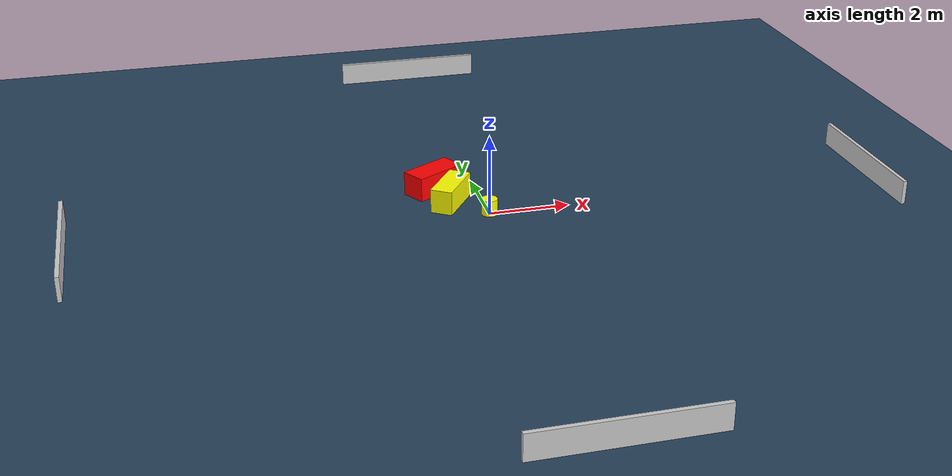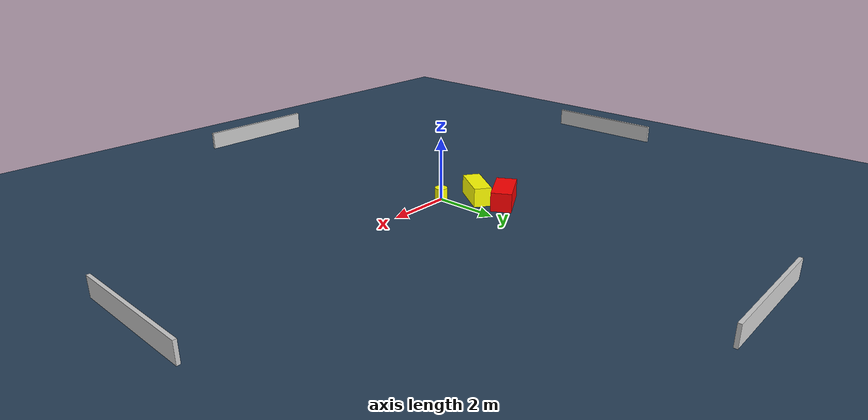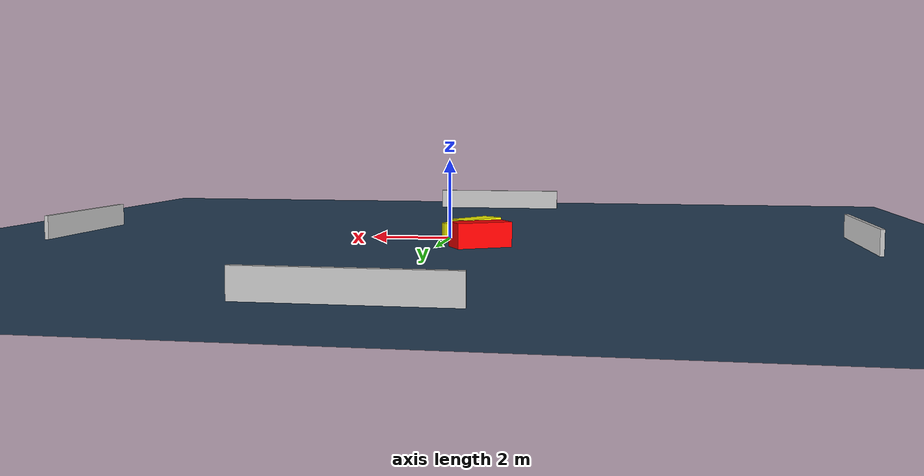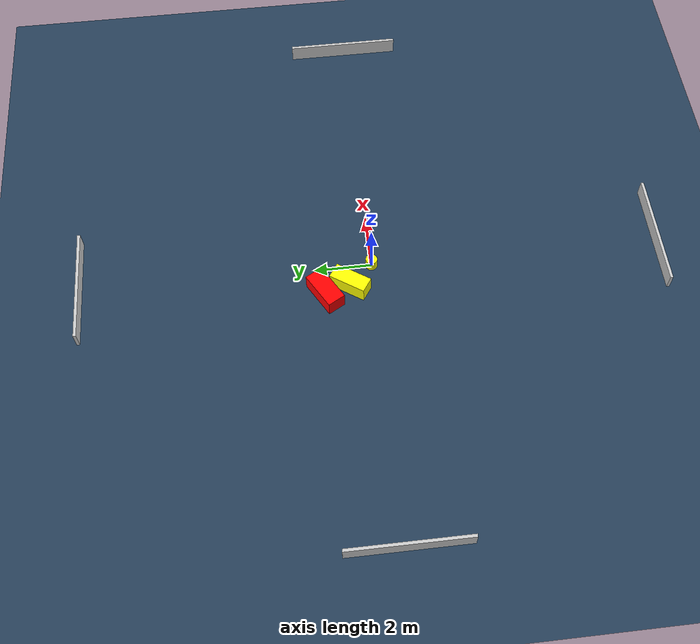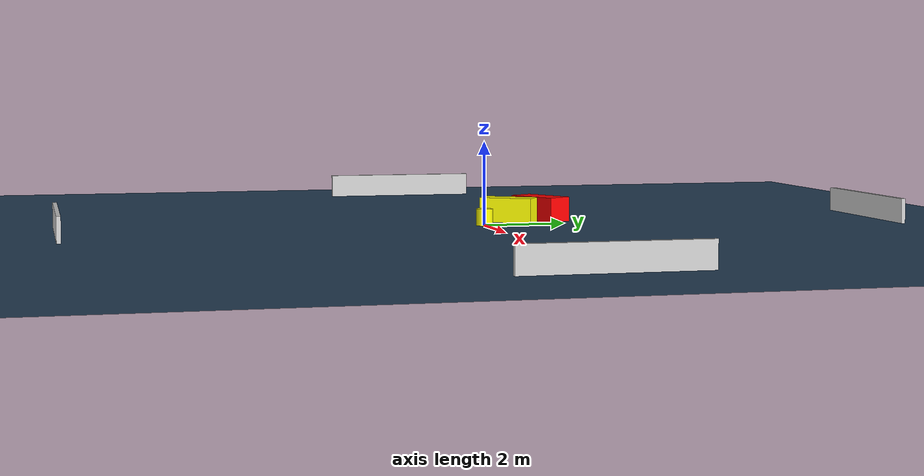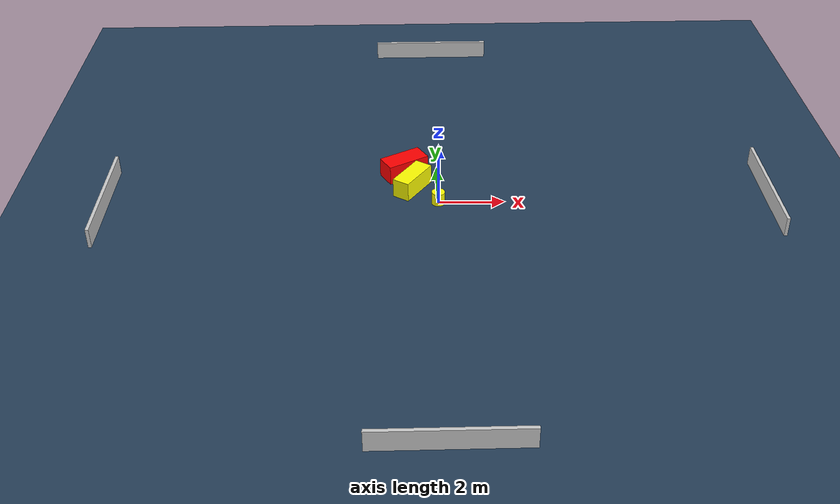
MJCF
<?xml version="1.0" ?>
<mujoco model="generated_environment">
  <option timestep="0.01" integrator="RK4" cone="elliptic"/>
  <default>
    <geom density="1"/>
  </default>
  <asset>
    <texture builtin="gradient" height="3072" name="skybox" rgb1="0.3 0.5 0.7" rgb2="0 0 0" type="skybox" width="512"/>
    <texture builtin="checker" height="300" name="groundplane" rgb1="0.2 0.3 0.4" rgb2="0.1 0.2 0.3" type="2d" width="300"/>
    <material name="groundplane" reflectance="0.2" texrepeat="5 5" texture="groundplane"/>
  </asset>
  <worldbody>
    <light dir="0 0 -1" directional="true" pos="0 0 1.5"/>
    <geom condim="3" friction="0.5 0.005 0.001" material="groundplane" name="floor" pos="0 0 0" size="0 0 0.05" type="plane"/>
    <body name="walls">
      <geom name="wall_1" condim="4" pos="-10.0 0.0 0.3" rgba="0.800000011920929 0.800000011920929 0.800000011920929 1.0" size="0.05 2.0 0.3" type="box"/>
      <geom name="wall_2" condim="4" pos="10.0 0.0 0.3" rgba="0.800000011920929 0.800000011920929 0.800000011920929 1.0" size="0.05 2.0 0.3" type="box"/>
      <geom name="wall_3" condim="4" pos="0.0 -10.0 0.3" rgba="0.800000011920929 0.800000011920929 0.800000011920929 1.0" size="2.0 0.05 0.3" type="box"/>
      <geom name="wall_4" condim="4" pos="0.0 10.0 0.3" rgba="0.800000011920929 0.800000011920929 0.800000011920929 1.0" size="2.0 0.05 0.3" type="box"/>
    </body>
    <body name="robot">
      <joint name="joint_x" type="slide" pos="0 0 0" axis="1 0 0"/>
      <joint name="joint_y" type="slide" pos="0 0 0" axis="0 1 0"/>
      <geom name="robot" type="cylinder" pos="0.0 0.0 0.2" size="0.2 0.2 0.0" mass="5.0" friction="1.0 0.005 0.0001" condim="4" rgba="1.0 1.0 0.0 1.0"/>
    </body>
    <body name="obstacle_1_movable">
      <geom name="obstacle_1_movable" condim="4" pos="-0.7739214259670785 0.8107150076829682 0.3" euler="0 0 236.12969909964653" friction="0.0 0.005 0.001" rgba="1.0 1.0 0.0 1.0" size="0.6517409537356409 0.27455771408324353 0.3" type="box" mass="0.1"/>
      <joint type="free"/>
    </body>
    <body name="obstacle_2_static">
      <geom name="obstacle_2_static" condim="4" pos="-1.0234865360689158 1.6875777302917878 0.3" euler="0 0 120.03943540351379" friction="0.0 0.005 0.001" rgba="1.0 0.0 0.0 1.0" size="0.3206525935477878 0.678949178215722 0.3" type="box"/>
    </body>
  </worldbody>
  <actuator>
    <motor name="actuator_x" joint="joint_x" gear="1" ctrlrange="-1 1"/>
    <motor name="actuator_y" joint="joint_y" gear="1" ctrlrange="-1 1"/>
  </actuator>
</mujoco>
